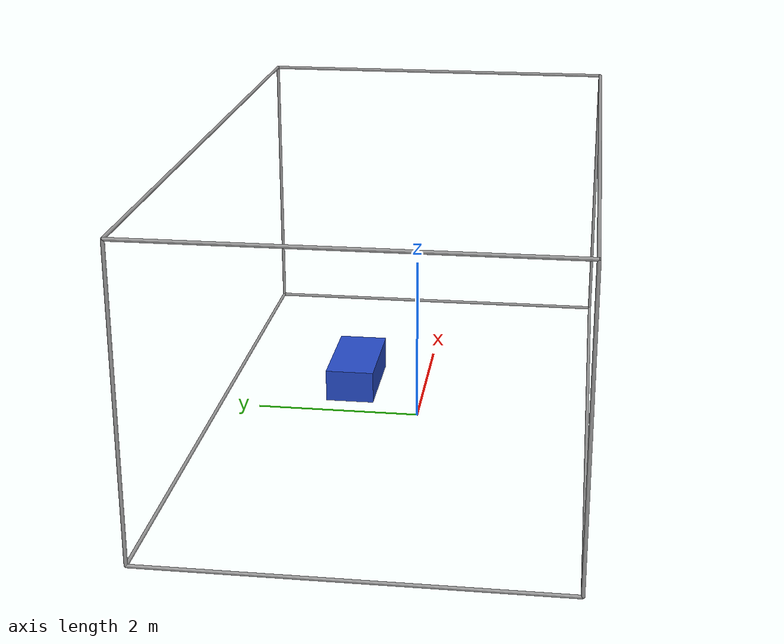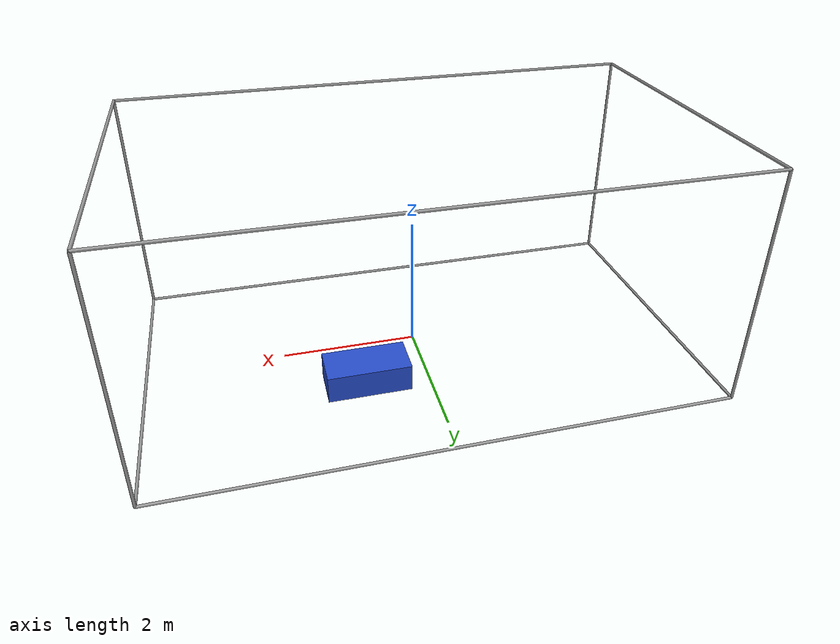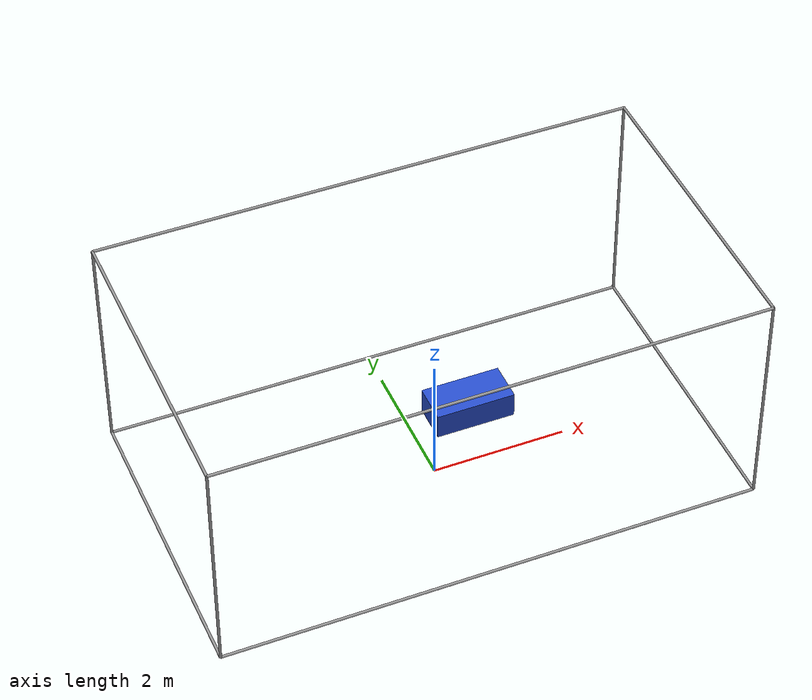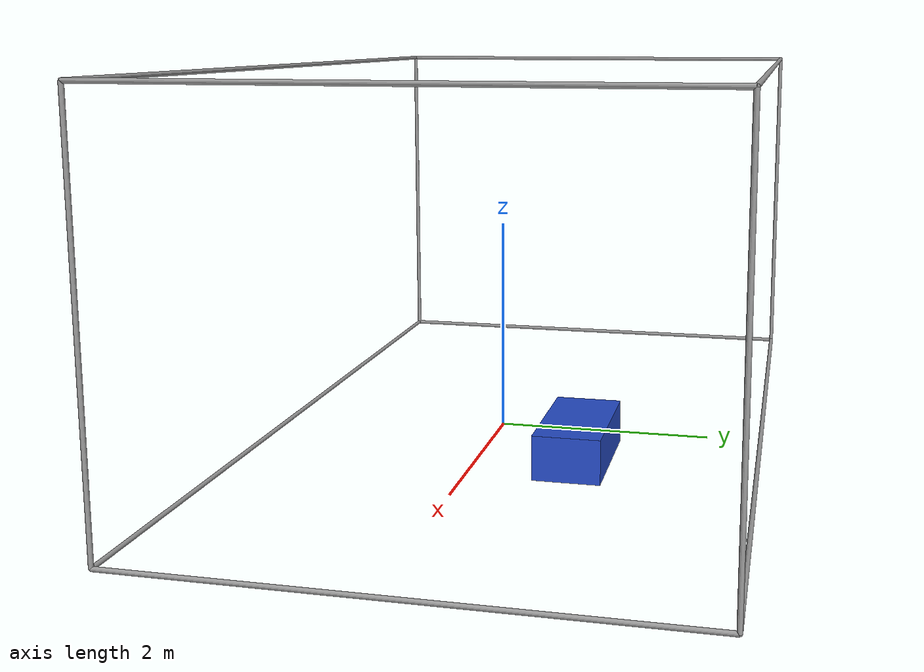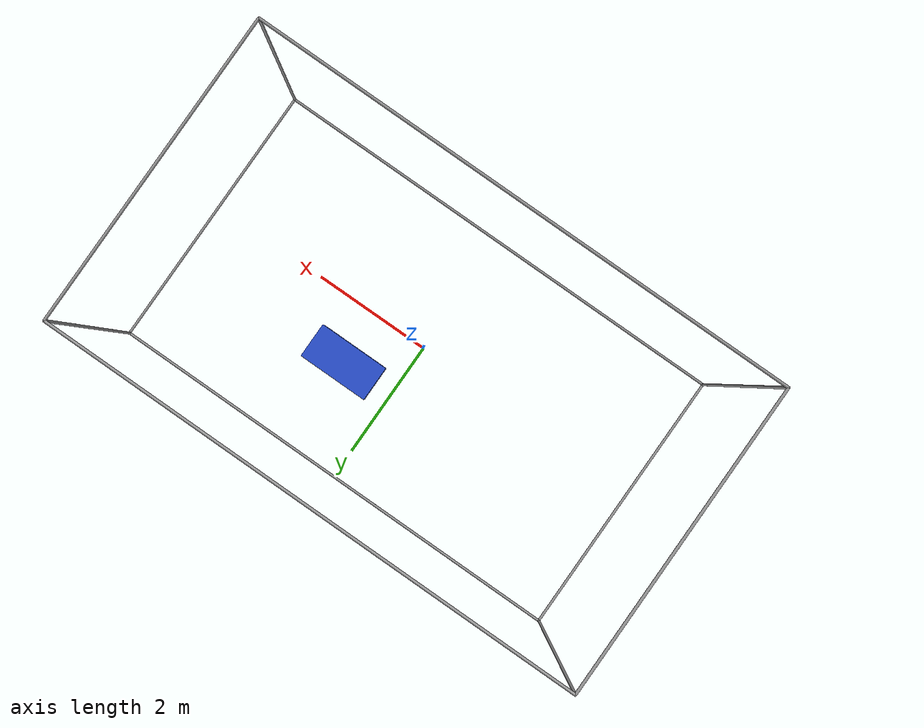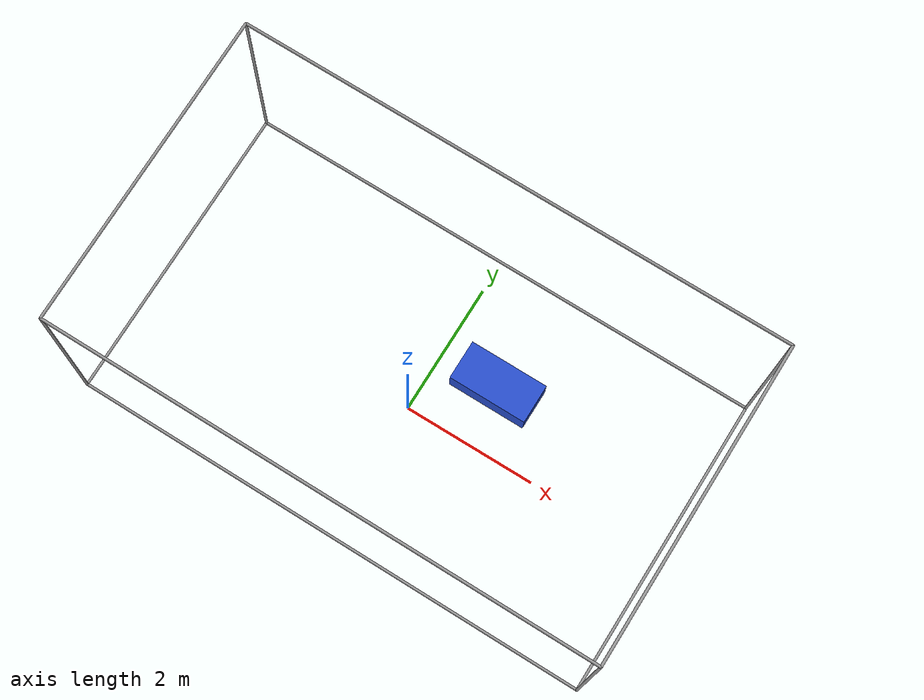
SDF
<?xml version="1.0"?>
<sdf version="1.4">
  <model name="caroca_nocables">
    <!--Definition of the robot frame-->
    <link name="frame">
      <pose>0 0 0 0 0 0</pose>
      <inertial>
        <inertia>
          <ixx>100000</ixx>
          <iyy>100000</iyy>
          <izz>100000</izz>
          <ixy>0</ixy>
          <ixz>0</ixz>
          <iyz>0</iyz>
        </inertia>
        <mass>100000</mass>
      </inertial>
      <visual name="visual1">
        <geometry>
          <cylinder>
            <radius>0.02</radius>
            <length>3.48</length>
          </cylinder>
        </geometry>
        <pose>-4.000000 -2.100000 1.760000 0.000000 0.000000 0.000000</pose>
        <material>
          <script>
            <uri>file://media/materials/scripts/kitchen.material</uri>
            <name>Gazebo/Grey</name>
          </script>
        </material>
      </visual>
      <collision name="collision1">
        <geometry>
          <cylinder>
            <radius>0.02</radius>
          </cylinder>
        </geometry>
        <pose>-4.000000 -2.100000 1.760000 0.000000 0.000000 0.000000</pose>
      </collision>
      <visual name="visual2">
        <geometry>
          <cylinder>
            <radius>0.02</radius>
            <length>4.6</length>
          </cylinder>
        </geometry>
        <pose>-4.000000 0.200000 0.020000 1.570796 0.000000 0.000000</pose>
        <material>
          <script>
            <uri>file://media/materials/scripts/kitchen.material</uri>
            <name>Gazebo/Grey</name>
          </script>
        </material>
      </visual>
      <collision name="collision2">
        <geometry>
          <cylinder>
            <radius>0.02</radius>
          </cylinder>
        </geometry>
        <pose>-4.000000 0.200000 0.020000 1.570796 0.000000 0.000000</pose>
      </collision>
      <visual name="visual3">
        <geometry>
          <cylinder>
            <radius>0.02</radius>
            <length>8.0</length>
          </cylinder>
        </geometry>
        <pose>0.000000 -2.100000 0.020000 0.000000 1.570796 0.000000</pose>
        <material>
          <script>
            <uri>file://media/materials/scripts/kitchen.material</uri>
            <name>Gazebo/Grey</name>
          </script>
        </material>
      </visual>
      <collision name="collision3">
        <geometry>
          <cylinder>
            <radius>0.02</radius>
          </cylinder>
        </geometry>
        <pose>0.000000 -2.100000 0.020000 0.000000 1.570796 0.000000</pose>
      </collision>
      <visual name="visual4">
        <geometry>
          <cylinder>
            <radius>0.02</radius>
            <length>4.6</length>
          </cylinder>
        </geometry>
        <pose>-4.000000 0.200000 3.500000 1.570796 0.000000 0.000000</pose>
        <material>
          <script>
            <uri>file://media/materials/scripts/kitchen.material</uri>
            <name>Gazebo/Grey</name>
          </script>
        </material>
      </visual>
      <collision name="collision4">
        <geometry>
          <cylinder>
            <radius>0.02</radius>
          </cylinder>
        </geometry>
        <pose>-4.000000 0.200000 3.500000 1.570796 0.000000 0.000000</pose>
      </collision>
      <visual name="visual5">
        <geometry>
          <cylinder>
            <radius>0.02</radius>
            <length>8.0</length>
          </cylinder>
        </geometry>
        <pose>0.000000 -2.100000 3.500000 0.000000 1.570796 0.000000</pose>
        <material>
          <script>
            <uri>file://media/materials/scripts/kitchen.material</uri>
            <name>Gazebo/Grey</name>
          </script>
        </material>
      </visual>
      <collision name="collision5">
        <geometry>
          <cylinder>
            <radius>0.02</radius>
          </cylinder>
        </geometry>
        <pose>0.000000 -2.100000 3.500000 0.000000 1.570796 0.000000</pose>
      </collision>
      <visual name="visual6">
        <geometry>
          <cylinder>
            <radius>0.02</radius>
            <length>3.48</length>
          </cylinder>
        </geometry>
        <pose>-4.000000 2.500000 1.760000 0.000000 0.000000 0.000000</pose>
        <material>
          <script>
            <uri>file://media/materials/scripts/kitchen.material</uri>
            <name>Gazebo/Grey</name>
          </script>
        </material>
      </visual>
      <collision name="collision6">
        <geometry>
          <cylinder>
            <radius>0.02</radius>
          </cylinder>
        </geometry>
        <pose>-4.000000 2.500000 1.760000 0.000000 0.000000 0.000000</pose>
      </collision>
      <visual name="visual7">
        <geometry>
          <cylinder>
            <radius>0.02</radius>
            <length>8.0</length>
          </cylinder>
        </geometry>
        <pose>0.000000 2.500000 0.020000 0.000000 1.570796 0.000000</pose>
        <material>
          <script>
            <uri>file://media/materials/scripts/kitchen.material</uri>
            <name>Gazebo/Grey</name>
          </script>
        </material>
      </visual>
      <collision name="collision7">
        <geometry>
          <cylinder>
            <radius>0.02</radius>
          </cylinder>
        </geometry>
        <pose>0.000000 2.500000 0.020000 0.000000 1.570796 0.000000</pose>
      </collision>
      <visual name="visual8">
        <geometry>
          <cylinder>
            <radius>0.02</radius>
            <length>8.0</length>
          </cylinder>
        </geometry>
        <pose>0.000000 2.500000 3.500000 0.000000 1.570796 0.000000</pose>
        <material>
          <script>
            <uri>file://media/materials/scripts/kitchen.material</uri>
            <name>Gazebo/Grey</name>
          </script>
        </material>
      </visual>
      <collision name="collision8">
        <geometry>
          <cylinder>
            <radius>0.02</radius>
          </cylinder>
        </geometry>
        <pose>0.000000 2.500000 3.500000 0.000000 1.570796 0.000000</pose>
      </collision>
      <visual name="visual9">
        <geometry>
          <cylinder>
            <radius>0.02</radius>
            <length>3.48</length>
          </cylinder>
        </geometry>
        <pose>4.000000 -2.100000 1.760000 0.000000 0.000000 0.000000</pose>
        <material>
          <script>
            <uri>file://media/materials/scripts/kitchen.material</uri>
            <name>Gazebo/Grey</name>
          </script>
        </material>
      </visual>
      <collision name="collision9">
        <geometry>
          <cylinder>
            <radius>0.02</radius>
          </cylinder>
        </geometry>
        <pose>4.000000 -2.100000 1.760000 0.000000 0.000000 0.000000</pose>
      </collision>
      <visual name="visual10">
        <geometry>
          <cylinder>
            <radius>0.02</radius>
            <length>4.6</length>
          </cylinder>
        </geometry>
        <pose>4.000000 0.200000 0.020000 1.570796 0.000000 0.000000</pose>
        <material>
          <script>
            <uri>file://media/materials/scripts/kitchen.material</uri>
            <name>Gazebo/Grey</name>
          </script>
        </material>
      </visual>
      <collision name="collision10">
        <geometry>
          <cylinder>
            <radius>0.02</radius>
          </cylinder>
        </geometry>
        <pose>4.000000 0.200000 0.020000 1.570796 0.000000 0.000000</pose>
      </collision>
      <visual name="visual11">
        <geometry>
          <cylinder>
            <radius>0.02</radius>
            <length>4.6</length>
          </cylinder>
        </geometry>
        <pose>4.000000 0.200000 3.500000 1.570796 0.000000 0.000000</pose>
        <material>
          <script>
            <uri>file://media/materials/scripts/kitchen.material</uri>
            <name>Gazebo/Grey</name>
          </script>
        </material>
      </visual>
      <collision name="collision11">
        <geometry>
          <cylinder>
            <radius>0.02</radius>
          </cylinder>
        </geometry>
        <pose>4.000000 0.200000 3.500000 1.570796 0.000000 0.000000</pose>
      </collision>
      <visual name="visual12">
        <geometry>
          <cylinder>
            <radius>0.02</radius>
            <length>3.48</length>
          </cylinder>
        </geometry>
        <pose>4.000000 2.500000 1.760000 0.000000 0.000000 0.000000</pose>
        <material>
          <script>
            <uri>file://media/materials/scripts/kitchen.material</uri>
            <name>Gazebo/Grey</name>
          </script>
        </material>
      </visual>
      <collision name="collision12">
        <geometry>
          <cylinder>
            <radius>0.02</radius>
          </cylinder>
        </geometry>
        <pose>4.000000 2.500000 1.760000 0.000000 0.000000 0.000000</pose>
      </collision>
    </link>
    <!--Definition of the robot platform-->
    <link name="platform">
      <pose>0.900000 0.900000 0.200000 0.000000 0.000000 0.000000</pose>
      <visual name="visualpf">
        <geometry>
          <box>
            <size>1.200000 0.600000 0.400000</size>
          </box>
        </geometry>
        <material>
          <script>
            <uri>file://media/materials/scripts/kitchen.material</uri>
            <name>Gazebo/Blue</name>
          </script>
        </material>
      </visual>
      <collision name="collisionpf">
        <geometry>
          <box>
            <size>1.200000 0.600000 0.400000</size>
          </box>
        </geometry>
      </collision>
      <inertial>
        <inertia>
          <ixx>100.0</ixx>
          <iyy>100.0</iyy>
          <izz>100.0</izz>
          <ixy>0.0</ixy>
          <ixz>0.0</ixz>
          <iyz>0.0</iyz>
        </inertia>
        <mass>150</mass>
      </inertial>
    </link>
    <plugin filename="libcdpr_plugin.so" name="cdpr_plugin"/>
  </model>
</sdf>
